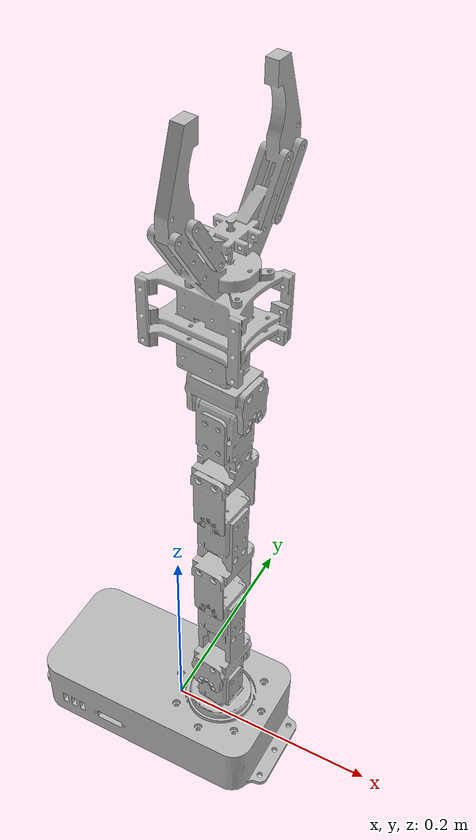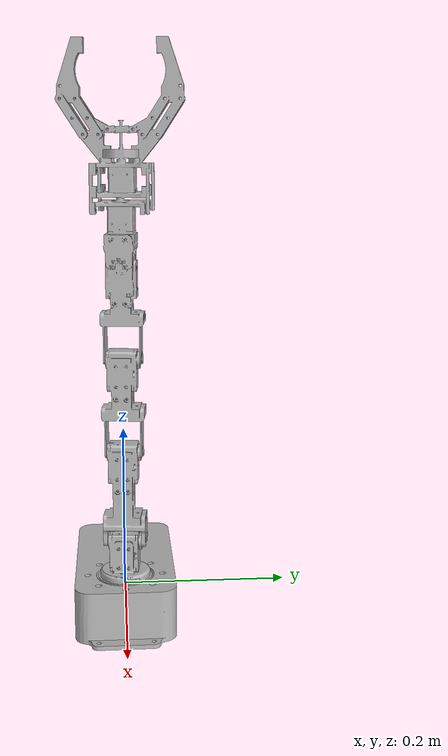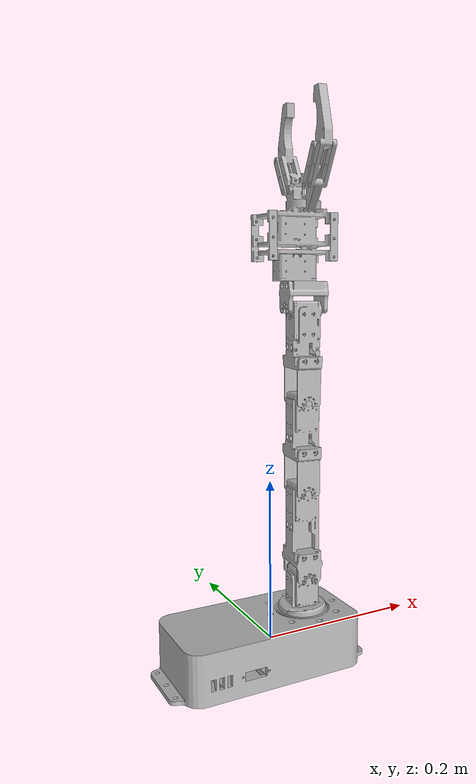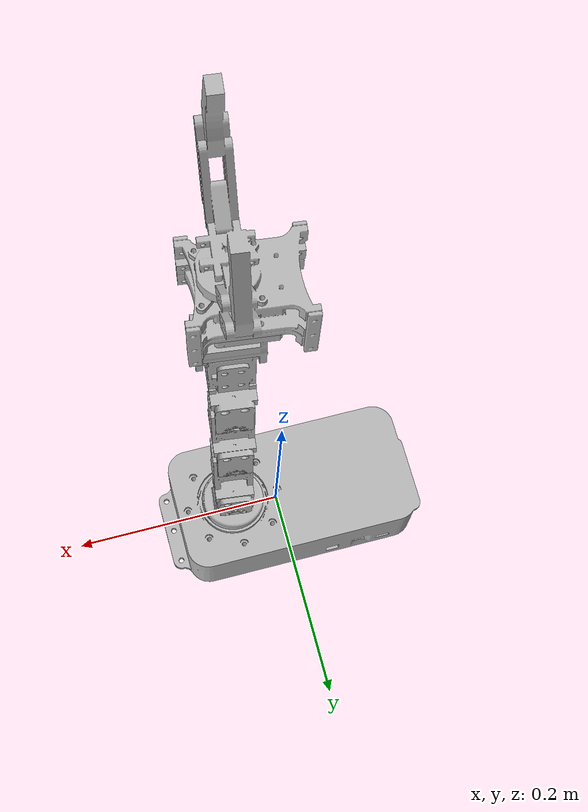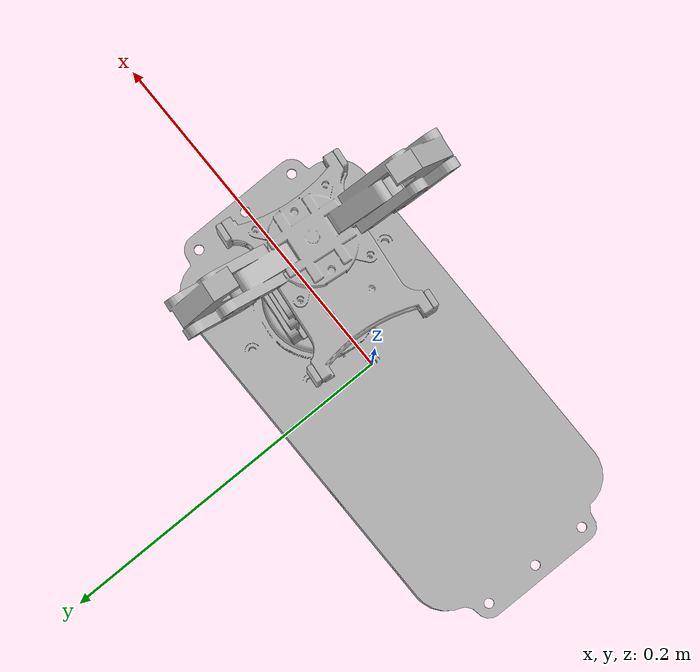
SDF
<sdf version='1.7'>
  <model name='urdf_assem'>
    <link name='base_link'>
      <inertial>
        <pose>-0 0 -0 0 -0 0</pose>
        <mass>0.62852</mass>
        <inertia>
          <ixx>0.00090495</ixx>
          <ixy>-8.558e-08</ixy>
          <ixz>5.5032e-07</ixz>
          <iyy>0.00078655</iyy>
          <iyz>-1.6194e-06</iyz>
          <izz>0.001595</izz>
        </inertia>
      </inertial>
      <collision name='base_link_collision'>
        <pose>0 0 0 0 -0 0</pose>
        <geometry>
          <mesh>
            <scale>1 1 1</scale>
            <uri>model://urdf_assem/meshes/base_link.STL</uri>
          </mesh>
        </geometry>
      </collision>
      <visual name='base_link_visual'>
        <pose>0 0 0 0 -0 0</pose>
        <geometry>
          <mesh>
            <scale>1 1 1</scale>
            <uri>model://urdf_assem/meshes/base_link.STL</uri>
          </mesh>
        </geometry>
      </visual>
    </link>
    <joint name='1yaw' type='revolute'>
      <pose relative_to='base_link'>0.044649 4.6e-05 0.002086 0 -0 0</pose>
      <parent>base_link</parent>
      <child>1yaw_Link</child>
      <axis>
        <xyz>0 0 -1</xyz>
        <limit>
          <lower>0</lower>
          <upper>0</upper>
          <effort>0</effort>
          <velocity>0</velocity>
        </limit>
        <dynamics>
          <spring_reference>0</spring_reference>
          <spring_stiffness>0</spring_stiffness>
        </dynamics>
      </axis>
    </joint>
    <link name='1yaw_Link'>
      <pose relative_to='1yaw'>0 0 0 0 -0 0</pose>
      <inertial>
        <pose>0.000138 -0.000228 0.051001 0 -0 0</pose>
        <mass>0.070658</mass>
        <inertia>
          <ixx>1.9218e-05</ixx>
          <ixy>4.5889e-09</ixy>
          <ixz>3.3772e-08</ixz>
          <iyy>1.93e-05</iyy>
          <iyz>2.5327e-07</iyz>
          <izz>1.7629e-05</izz>
        </inertia>
      </inertial>
      <collision name='1yaw_Link_collision'>
        <pose>0 0 0 0 -0 0</pose>
        <geometry>
          <mesh>
            <scale>1 1 1</scale>
            <uri>model://urdf_assem/meshes/1yaw_Link.STL</uri>
          </mesh>
        </geometry>
      </collision>
      <visual name='1yaw_Link_visual'>
        <pose>0 0 0 0 -0 0</pose>
        <geometry>
          <mesh>
            <scale>1 1 1</scale>
            <uri>model://urdf_assem/meshes/1yaw_Link.STL</uri>
          </mesh>
        </geometry>
      </visual>
    </link>
    <joint name='2pitch' type='revolute'>
      <pose relative_to='1yaw_Link'>0.000247 -2.9e-05 0.071254 0 -0 0</pose>
      <parent>1yaw_Link</parent>
      <child>2pitch_Link</child>
      <axis>
        <xyz>0.11512 0.99335 0</xyz>
        <limit>
          <lower>0</lower>
          <upper>0</upper>
          <effort>0</effort>
          <velocity>0</velocity>
        </limit>
        <dynamics>
          <spring_reference>0</spring_reference>
          <spring_stiffness>0</spring_stiffness>
        </dynamics>
      </axis>
    </joint>
    <link name='2pitch_Link'>
      <pose relative_to='2pitch'>0 0 0 0 -0 0</pose>
      <inertial>
        <pose>-0.000109 -0.0002 -0.020253 0 -0 0</pose>
        <mass>0.070658</mass>
        <inertia>
          <ixx>1.9218e-05</ixx>
          <ixy>4.5889e-09</ixy>
          <ixz>3.3772e-08</ixz>
          <iyy>1.93e-05</iyy>
          <iyz>2.5327e-07</iyz>
          <izz>1.7629e-05</izz>
        </inertia>
      </inertial>
      <collision name='2pitch_Link_collision'>
        <pose>0 0 0 0 -0 0</pose>
        <geometry>
          <mesh>
            <scale>1 1 1</scale>
            <uri>model://urdf_assem/meshes/2pitch_Link.STL</uri>
          </mesh>
        </geometry>
      </collision>
      <visual name='2pitch_Link_visual'>
        <pose>0 0 0 0 -0 0</pose>
        <geometry>
          <mesh>
            <scale>1 1 1</scale>
            <uri>model://urdf_assem/meshes/2pitch_Link.STL</uri>
          </mesh>
        </geometry>
      </visual>
    </link>
    <joint name='3pitch' type='revolute'>
      <pose relative_to='2pitch_Link'>-0.000226 -0.000225 0.11 0 -0 0</pose>
      <parent>2pitch_Link</parent>
      <child>3pitch_Link</child>
      <axis>
        <xyz>0.11512 0.99335 0</xyz>
        <limit>
          <lower>0</lower>
          <upper>0</upper>
          <effort>0</effort>
          <velocity>0</velocity>
        </limit>
        <dynamics>
          <spring_reference>0</spring_reference>
          <spring_stiffness>0</spring_stiffness>
        </dynamics>
      </axis>
    </joint>
    <link name='3pitch_Link'>
      <pose relative_to='3pitch'>0 0 0 0 -0 0</pose>
      <inertial>
        <pose>0.000113 0.000171 -0.042597 0 -0 0</pose>
        <mass>0.097967</mass>
        <inertia>
          <ixx>2.7803e-05</ixx>
          <ixy>-2.9858e-07</ixy>
          <ixz>5.1607e-08</ixz>
          <iyy>2.5307e-05</iyy>
          <iyz>4.1167e-07</iyz>
          <izz>2.1924e-05</izz>
        </inertia>
      </inertial>
      <collision name='3pitch_Link_collision'>
        <pose>0 0 0 0 -0 0</pose>
        <geometry>
          <mesh>
            <scale>1 1 1</scale>
            <uri>model://urdf_assem/meshes/3pitch_Link.STL</uri>
          </mesh>
        </geometry>
      </collision>
      <visual name='3pitch_Link_visual'>
        <pose>0 0 0 0 -0 0</pose>
        <geometry>
          <mesh>
            <scale>1 1 1</scale>
            <uri>model://urdf_assem/meshes/3pitch_Link.STL</uri>
          </mesh>
        </geometry>
      </visual>
    </link>
    <joint name='4pitch' type='revolute'>
      <pose relative_to='3pitch_Link'>0.000297 -3.4e-05 0.1115 0 -0 0</pose>
      <parent>3pitch_Link</parent>
      <child>4pitch_Link</child>
      <axis>
        <xyz>0.11512 0.99335 0</xyz>
        <limit>
          <lower>0</lower>
          <upper>0</upper>
          <effort>0</effort>
          <velocity>0</velocity>
        </limit>
        <dynamics>
          <spring_reference>0</spring_reference>
          <spring_stiffness>0</spring_stiffness>
        </dynamics>
      </axis>
    </joint>
    <link name='4pitch_Link'>
      <pose relative_to='4pitch'>0 0 0 0 -0 0</pose>
      <inertial>
        <pose>-0.000139 0.000152 -0.032575 0 -0 0</pose>
        <mass>0.086004</mass>
        <inertia>
          <ixx>2.3019e-05</ixx>
          <ixy>-3.0261e-07</ixy>
          <ixz>3.9574e-08</ixz>
          <iyy>2.0489e-05</iyy>
          <iyz>3.0865e-07</iyz>
          <izz>1.8118e-05</izz>
        </inertia>
      </inertial>
      <collision name='4pitch_Link_collision'>
        <pose>0 0 0 0 -0 0</pose>
        <geometry>
          <mesh>
            <scale>1 1 1</scale>
            <uri>model://urdf_assem/meshes/4pitch_Link.STL</uri>
          </mesh>
        </geometry>
      </collision>
      <visual name='4pitch_Link_visual'>
        <pose>0 0 0 0 -0 0</pose>
        <geometry>
          <mesh>
            <scale>1 1 1</scale>
            <uri>model://urdf_assem/meshes/4pitch_Link.STL</uri>
          </mesh>
        </geometry>
      </visual>
    </link>
    <joint name='5pitch' type='revolute'>
      <pose relative_to='4pitch_Link'>0.000255 2.1e-05 0.1115 0 -0 0</pose>
      <parent>4pitch_Link</parent>
      <child>5pitch_Link</child>
      <axis>
        <xyz>0.99335 -0.11512 0</xyz>
        <limit>
          <lower>0</lower>
          <upper>0</upper>
          <effort>0</effort>
          <velocity>0</velocity>
        </limit>
        <dynamics>
          <spring_reference>0</spring_reference>
          <spring_stiffness>0</spring_stiffness>
        </dynamics>
      </axis>
    </joint>
    <link name='5pitch_Link'>
      <pose relative_to='5pitch'>0 0 0 0 -0 0</pose>
      <inertial>
        <pose>-0.0002 0.000395 -0.032621 0 -0 0</pose>
        <mass>0.086678</mass>
        <inertia>
          <ixx>2.3221e-05</ixx>
          <ixy>-3.2277e-07</ixy>
          <ixz>2.5762e-07</ixz>
          <iyy>2.0427e-05</iyy>
          <iyz>-1.2391e-09</iyz>
          <izz>1.8284e-05</izz>
        </inertia>
      </inertial>
      <collision name='5pitch_Link_collision'>
        <pose>0 0 0 0 -0 0</pose>
        <geometry>
          <mesh>
            <scale>1 1 1</scale>
            <uri>model://urdf_assem/meshes/5pitch_Link.STL</uri>
          </mesh>
        </geometry>
      </collision>
      <visual name='5pitch_Link_visual'>
        <pose>0 0 0 0 -0 0</pose>
        <geometry>
          <mesh>
            <scale>1 1 1</scale>
            <uri>model://urdf_assem/meshes/5pitch_Link.STL</uri>
          </mesh>
        </geometry>
      </visual>
    </link>
    <joint name='6roll' type='revolute'>
      <pose relative_to='5pitch_Link'>0.00074 -0.00019 0.052 0 -0 0</pose>
      <parent>5pitch_Link</parent>
      <child>6roll_Link</child>
      <axis>
        <xyz>0 0 -1</xyz>
        <limit>
          <lower>0</lower>
          <upper>0</upper>
          <effort>0</effort>
          <velocity>0</velocity>
        </limit>
        <dynamics>
          <spring_reference>0</spring_reference>
          <spring_stiffness>0</spring_stiffness>
        </dynamics>
      </axis>
    </joint>
    <link name='6roll_Link'>
      <pose relative_to='6roll'>0 0 0 0 -0 0</pose>
      <inertial>
        <pose>-0.006922 0.000836 -0.011417 0 -0 0</pose>
        <mass>0.073114</mass>
        <inertia>
          <ixx>1.0569e-05</ixx>
          <ixy>1.0678e-06</ixy>
          <ixz>2.3366e-07</ixz>
          <iyy>1.9621e-05</iyy>
          <iyz>-3.2881e-08</iyz>
          <izz>2.044e-05</izz>
        </inertia>
      </inertial>
      <collision name='6roll_Link_collision'>
        <pose>0 0 0 0 -0 0</pose>
        <geometry>
          <mesh>
            <scale>1 1 1</scale>
            <uri>model://urdf_assem/meshes/6roll_Link.STL</uri>
          </mesh>
        </geometry>
      </collision>
      <visual name='6roll_Link_visual'>
        <pose>0 0 0 0 -0 0</pose>
        <geometry>
          <mesh>
            <scale>1 1 1</scale>
            <uri>model://urdf_assem/meshes/6roll_Link.STL</uri>
          </mesh>
        </geometry>
      </visual>
    </link>
    <joint name='gripper' type='revolute'>
      <pose relative_to='6roll_Link'>0.000334 0.001637 0.043 0 -0 0</pose>
      <parent>6roll_Link</parent>
      <child>gripper_Link</child>
      <axis>
        <xyz>0 0 -1</xyz>
        <limit>
          <lower>0</lower>
          <upper>0</upper>
          <effort>0</effort>
          <velocity>0</velocity>
        </limit>
        <dynamics>
          <spring_reference>0</spring_reference>
          <spring_stiffness>0</spring_stiffness>
        </dynamics>
      </axis>
    </joint>
    <link name='gripper_Link'>
      <pose relative_to='gripper'>0 0 0 0 -0 0</pose>
      <inertial>
        <pose>-0.006469 0.000649 0.03076 0 -0 0</pose>
        <mass>0.17396</mass>
        <inertia>
          <ixx>4.4692e-05</ixx>
          <ixy>1.6658e-06</ixy>
          <ixz>-2.3558e-07</ixz>
          <iyy>5.8926e-05</iyy>
          <iyz>2.1103e-08</iyz>
          <izz>6.171e-05</izz>
        </inertia>
      </inertial>
      <collision name='gripper_Link_collision'>
        <pose>0 0 0 0 -0 0</pose>
        <geometry>
          <mesh>
            <scale>1 1 1</scale>
            <uri>model://urdf_assem/meshes/gripper_Link.STL</uri>
          </mesh>
        </geometry>
      </collision>
      <visual name='gripper_Link_visual'>
        <pose>0 0 0 0 -0 0</pose>
        <geometry>
          <mesh>
            <scale>1 1 1</scale>
            <uri>model://urdf_assem/meshes/gripper_Link.STL</uri>
          </mesh>
        </geometry>
      </visual>
    </link>
  </model>
</sdf>
